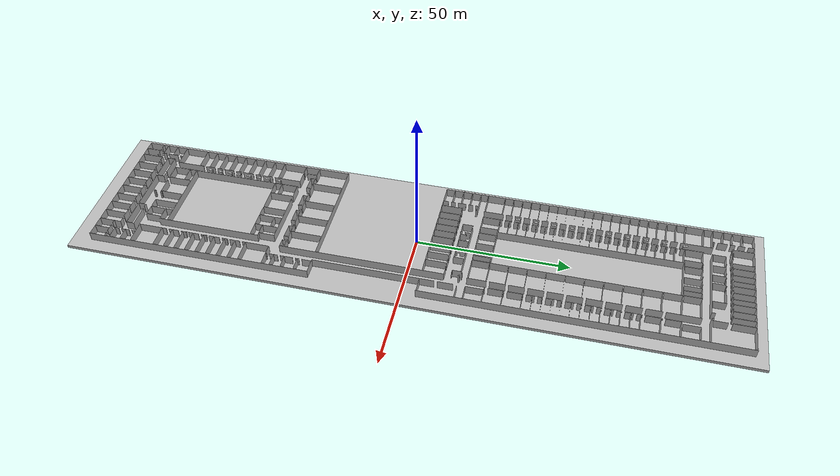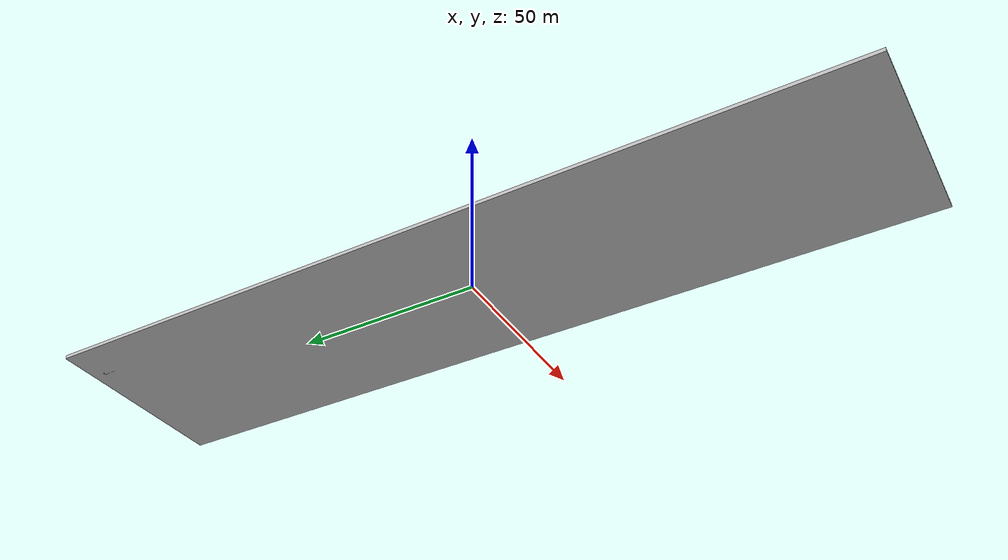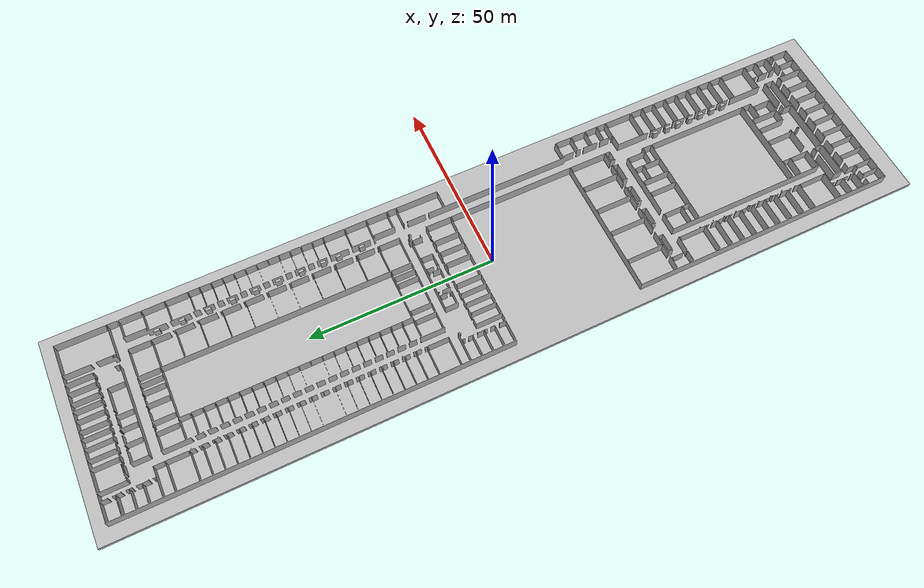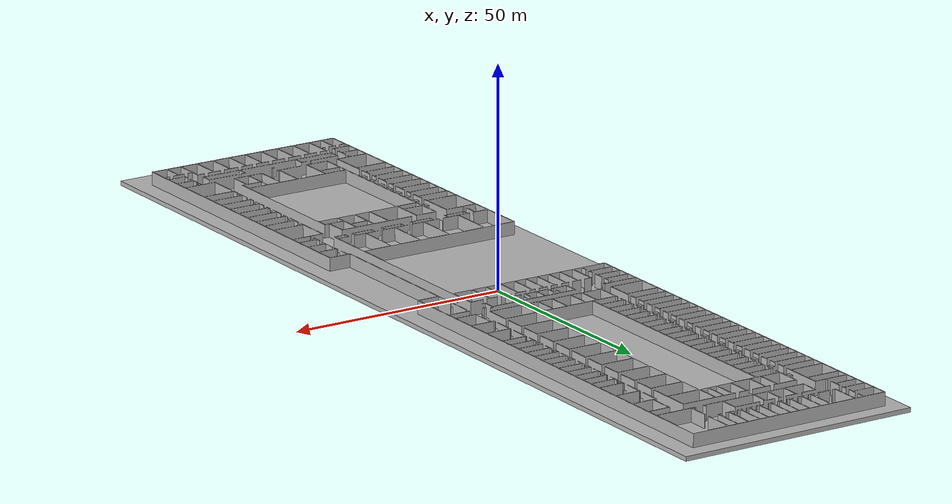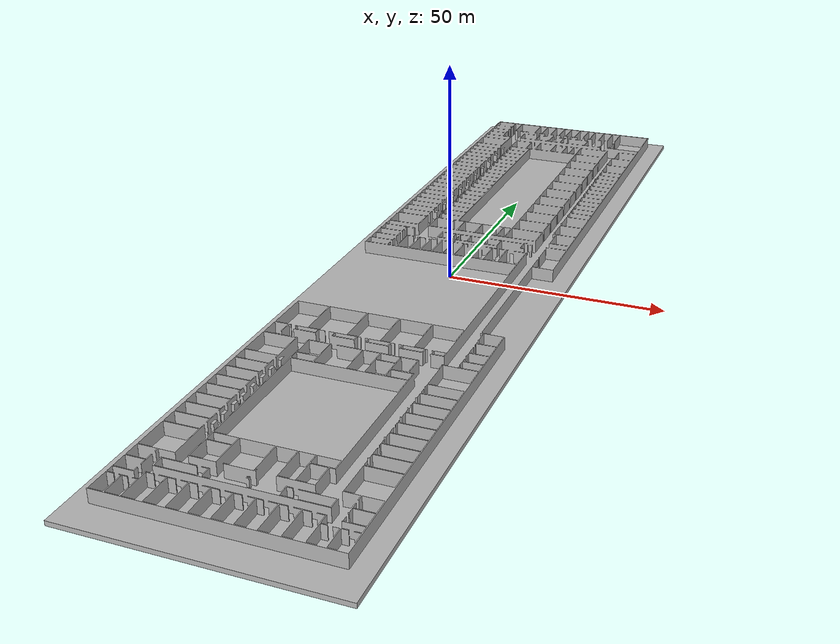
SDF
<?xml version="1.0" ?>
<sdf version="1.6">
  <model name="povo">
    <static>true</static>
    <link name="link">
      <collision name="collision">
        <geometry>
          <mesh>
            <uri>model://povo.model/meshes/povo.stl</uri>
          </mesh>
        </geometry>
      </collision>
      <visual name="visual">
        <geometry>
          <mesh>
            <uri>model://povo.model/meshes/povo.stl</uri>
          </mesh>
        </geometry>
      </visual>
    </link>
  </model>
</sdf>
